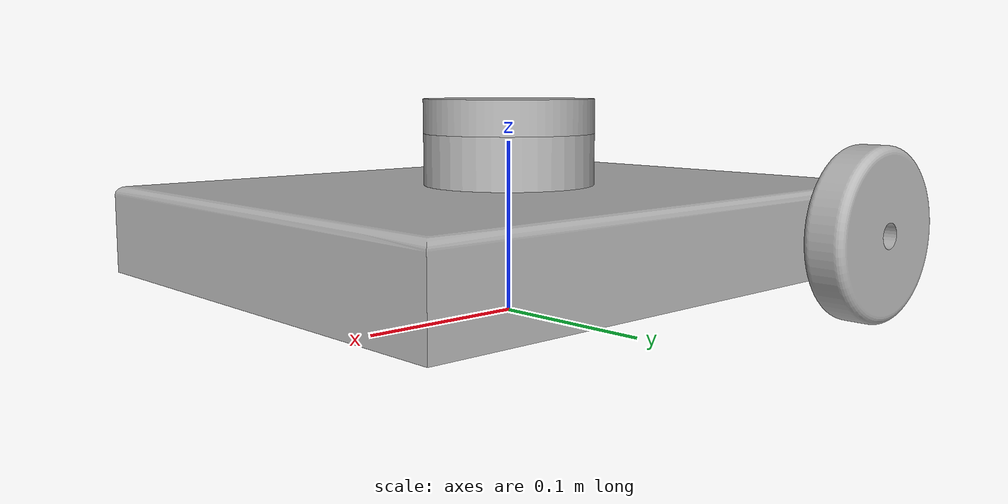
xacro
<?xml version="1.0" ?>
<robot name="differential_drive_robot" xmlns:xacro="http://www.ros.org/wiki/xacro">

<xacro:include filename="$(find differential_drive_robot_description)/urdf/materials.xacro" />
<xacro:include filename="$(find differential_drive_robot_description)/urdf/differential_drive_robot.trans" />
<xacro:include filename="$(find differential_drive_robot_description)/urdf/differential_drive_robot.gazebo" />
<link name="base_link">
  <inertial>
    <origin xyz="-4.1634234788150186e-05 2.742763305843625e-17 0.05174570082364915" rpy="0 0 0"/>
    <mass value="2"/>
    <inertia ixx="0.039312" iyy="0.05648" izz="0.092756" ixy="-0.0" iyz="0.0" ixz="-0.0"/>
  </inertial>
  <visual>
    <origin xyz="0 0 0" rpy="0 0 0"/>
    <geometry>
      <mesh filename="package://differential_drive_robot_description/meshes/base_link.stl" scale="0.001 0.001 0.001"/>
    </geometry>
    <material name="silver"/>
  </visual>
  <collision>
    <origin xyz="0 0 0" rpy="0 0 0"/>
    <geometry>
      <mesh filename="package://differential_drive_robot_description/meshes/base_link.stl" scale="0.001 0.001 0.001"/>
    </geometry>
  </collision>
</link>

<link name="right_wheel_1">
  <inertial>
    <origin xyz="0 0 0" rpy="0 0 0"/>
    <mass value="0.17543149376634687"/>
    <inertia ixx="0.000119" iyy="0.000221" izz="0.000119" ixy="-0.0" iyz="0.0" ixz="0.0"/>
  </inertial>
  <visual>
    <origin xyz="0.125 0.15 -0.05" rpy="0 0 0"/>
    <geometry>
      <mesh filename="package://differential_drive_robot_description/meshes/right_wheel_1.stl" scale="0.001 0.001 0.001"/>
    </geometry>
    <material name="silver"/>
  </visual>
  <collision>
    <origin xyz="0.125 0.15 -0.05" rpy="0 0 0"/>
    <geometry>
      <mesh filename="package://differential_drive_robot_description/meshes/right_wheel_1.stl" scale="0.001 0.001 0.001"/>
    </geometry>
  </collision>
</link>

<link name="left_wheel_1">
  <inertial>
    <origin xyz="0 0 0" rpy="0 0 0"/>
    <mass value="0.17543149376634684"/>
    <inertia ixx="0.000119" iyy="0.000221" izz="0.000119" ixy="0.0" iyz="-0.0" ixz="0.0"/>
  </inertial>
  <visual>
    <origin xyz="0.125 -0.15 -0.05" rpy="0 0 0"/>
    <geometry>
      <mesh filename="package://differential_drive_robot_description/meshes/left_wheel_1.stl" scale="0.001 0.001 0.001"/>
    </geometry>
    <material name="silver"/>
  </visual>
  <collision>
    <origin xyz="0.125 -0.15 -0.05" rpy="0 0 0"/>
    <geometry>
      <mesh filename="package://differential_drive_robot_description/meshes/left_wheel_1.stl" scale="0.001 0.001 0.001"/>
    </geometry>
  </collision>
</link>

<link name="caster_1">
  <inertial>
    <origin xyz="0 0 0" rpy="0 0 0"/>
    <mass value="0.1"/> <!-- Adjusted mass -->
    <inertia ixx="0.0001" iyy="0.0001" izz="0.0001" ixy="0.0" iyz="0.0" ixz="0.0"/> <!-- Adjusted inertia properties -->
  </inertial>
  <visual>
    <origin xyz="-0.175 0.0 -0.025" rpy="0 0 0"/>
    <geometry>
      <mesh filename="package://differential_drive_robot_description/meshes/caster_1.stl" scale="0.001 0.001 0.001"/>
    </geometry>
    <material name="silver"> <!-- Modified material -->
      <color rgba="0.8 0.8 0.8 1.0"/> <!-- Adjusted color -->
    </material>
  </visual>
  <collision>
    <origin xyz="-0.175 0.0 -0.025" rpy="0 0 0"/>
    <geometry>
      <mesh filename="package://differential_drive_robot_description/meshes/caster_1.stl" scale="0.001 0.001 0.001"/>
    </geometry>
  </collision>
</link>

<link name="lidar_1">
  <inertial>
    <origin xyz="0 0 0" rpy="0 0 0"/>
    <mass value="0.05"/>
    <inertia ixx="0.000812" iyy="0.000812" izz="0.001541" ixy="-0.0" iyz="-0.0" ixz="-0.0"/>
  </inertial>
  <visual>
    <origin xyz="-0.0 -0.0 -0.105" rpy="0 0 0"/>
    <geometry>
      <mesh filename="package://differential_drive_robot_description/meshes/lidar_1.stl" scale="0.001 0.001 0.001"/>
    </geometry>
    <material name="silver"/>
  </visual>
  <collision>
    <origin xyz="-0.0 -0.0 -0.105" rpy="0 0 0"/>
    <geometry>
      <mesh filename="package://differential_drive_robot_description/meshes/lidar_1.stl" scale="0.001 0.001 0.001"/>
    </geometry>
  </collision>
</link>

<joint name="Revolute 7" type="continuous">
  <origin xyz="-0.125 -0.15 0.05" rpy="0 0 0"/>
  <parent link="base_link"/>
  <child link="right_wheel_1"/>
  <axis xyz="0.0 1.0 0.0"/>
</joint>

<joint name="Revolute 8" type="continuous">
  <origin xyz="-0.125 0.15 0.05" rpy="0 0 0"/>
  <parent link="base_link"/>
  <child link="left_wheel_1"/>
  <axis xyz="0.0 1.0 0.0"/>
</joint>

<joint name="Rigid 9" type="fixed">
  <origin xyz="0.175 0.0 0.025" rpy="0 0 0"/>
  <parent link="base_link"/>
  <child link="caster_1"/>
</joint>

<joint name="Rigid 11" type="fixed">
  <origin xyz="0.0 0.0 0.105" rpy="0 0 0"/>
  <parent link="base_link"/>
  <child link="lidar_1"/>
</joint>

</robot>

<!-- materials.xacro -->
<robot name="differential_drive_robot" xmlns:xacro="http://www.ros.org/wiki/xacro" >

<material name="silver">
  <color rgba="0.700 0.700 0.700 1.000"/>
</material>
<material name="abs_white">
  <color rgba="0.9647058823529412 0.9647058823529412 0.9529411764705882 1.0"/>
</material>
<material name="rubber_soft">
  <color rgba="0.15294117647058825 0.15294117647058825 0.15294117647058825 1.0"/>
</material>
<material name="steel_satin">
  <color rgba="0.6274509803921569 0.6274509803921569 0.6274509803921569 1.0"/>
</material>
</robot>

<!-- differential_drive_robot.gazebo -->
<robot name="differential_drive_robot" xmlns:xacro="http://www.ros.org/wiki/xacro" >

<xacro:property name="body_color" value="Gazebo/Silver" />

<gazebo>
  <plugin name="control" filename="libgazebo_ros_control.so"/>
</gazebo>
<gazebo reference="base_link">
  <material>${body_color}</material>
  <mu1>0.2</mu1>
  <mu2>0.2</mu2>
  <selfCollide>true</selfCollide>
  <gravity>true</gravity>
</gazebo>

<gazebo reference="right_wheel_1">
  <material>${body_color}</material>
  <mu1>0.3</mu1>
  <mu2>0.3</mu2>
  <selfCollide>true</selfCollide>
</gazebo>

<gazebo reference="left_wheel_1">
  <material>${body_color}</material>
  <mu1>0.4</mu1>
  <mu2>0.4</mu2>
  <selfCollide>true</selfCollide>
</gazebo>

<gazebo reference="caster_1">
  <material>${body_color}</material>
  <mu1>0.1</mu1>
  <mu2>0.1</mu2>
  <selfCollide>true</selfCollide>
</gazebo>

<gazebo reference="lidar_1">
  <material>${body_color}</material>
  <mu1>0.2</mu1>
  <mu2>0.2</mu2>
  <selfCollide>true</selfCollide>
</gazebo>

<gazebo>
  <plugin name="differential_drive_controller" filename="libgazebo_ros_diff_drive.so">

    <!-- Plugin update rate in Hz -->
    <updateRate>10</updateRate>

    <!-- Name of left joint, defaults to `left_joint` -->
    <leftJoint>Revolute 8</leftJoint>

    <!-- Name of right joint, defaults to `right_joint` -->
    <rightJoint>Revolute 7</rightJoint>

    <!-- The distance from the center of one wheel to the other, in meters, defaults to 0.34 m -->
    <wheelSeparation>0.3</wheelSeparation>

    <!-- Diameter of the wheels, in meters, defaults to 0.15 m -->
    <wheelDiameter>0.1</wheelDiameter>

    <!-- Wheel acceleration, in rad/s^2, defaults to 0.0 rad/s^2 -->
    <wheelAcceleration>1.0</wheelAcceleration>

    <!-- Maximum torque which the wheels can produce, in Nm, defaults to 5 Nm -->
    <wheelTorque>20</wheelTorque>

    <!-- Topic to receive geometry_msgs/Twist message commands, defaults to `cmd_vel` -->
    <commandTopic>cmd_vel</commandTopic>

    <!-- Topic to publish nav_msgs/Odometry messages, defaults to `odom` -->
    <odometryTopic>odom</odometryTopic>

    <!-- Odometry frame, defaults to `odom` -->
    <odometryFrame>odom</odometryFrame>

    <!-- Robot frame to calculate odometry from, defaults to `base_footprint` -->
    <robotBaseFrame>base_link</robotBaseFrame>

    <!-- Odometry source, 0 for ENCODER, 1 for WORLD, defaults to WORLD -->
    <odometrySource>1</odometrySource>

    <!-- Set to true to publish transforms for the wheel links, defaults to false -->
    <publishWheelTF>true</publishWheelTF>

    <!-- Set to true to publish transforms for the odometry, defaults to true -->
    <publishOdom>true</publishOdom>

    <!-- Set to true to publish sensor_msgs/JointState on /joint_states for the wheel joints, defaults to false -->
    <publishWheelJointState>true</publishWheelJointState>

    <!-- Set to true to swap right and left wheels, defaults to true -->
    <legacyMode>false</legacyMode>
  </plugin>
</gazebo>

  <!-- hokuyo -->
  <gazebo reference="lidar_1">
    <sensor type="ray" name="head_hokuyo_sensor">
      <pose>0 0 0 0 0 0</pose>
      <visualize>true</visualize>
      <update_rate>20</update_rate>
      <ray>
        <scan>
          <horizontal>
            <samples>720</samples>
            <resolution>1</resolution>
            <min_angle>-3.14</min_angle>
            <max_angle>3.14</max_angle>
          </horizontal>
        </scan>
        <range>
          <min>0.1</min>
          <max>1.0</max>
          <resolution>0.01</resolution>
        </range>
        <noise>
          <type>gaussian</type>
          <mean>0.0</mean>
          <stddev>0.01</stddev>
        </noise>
      </ray>
      <plugin name="gazebo_ros_head_hokuyo_controller" filename="libgazebo_ros_laser.so">
        <topicName>/rrbot/laser/scan</topicName>
        <frameName>lidar_1</frameName>
      </plugin>
    </sensor>
  </gazebo>

</robot>
